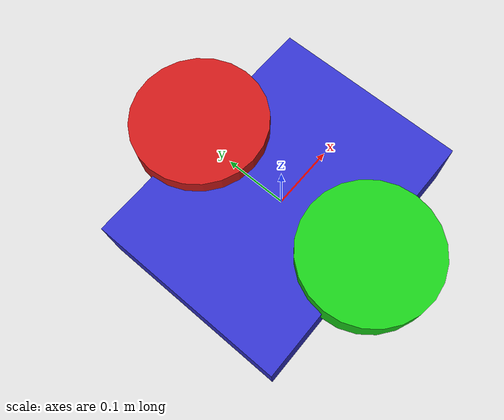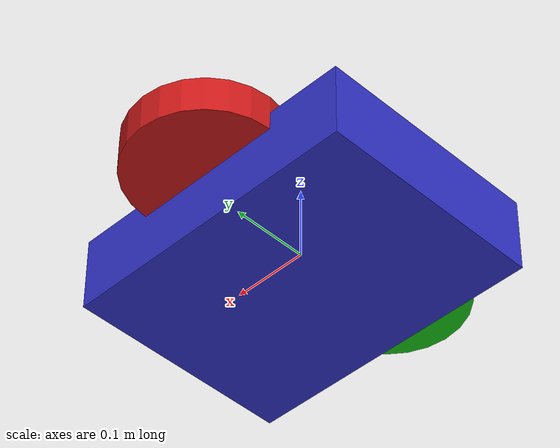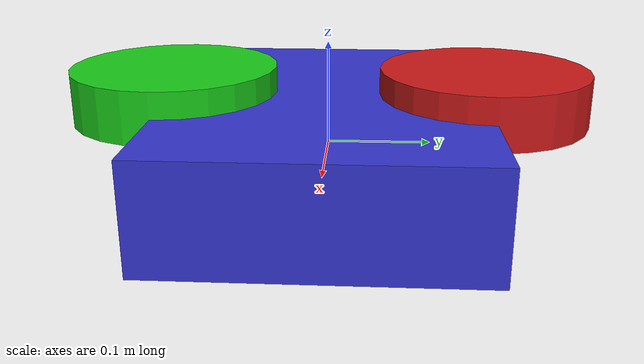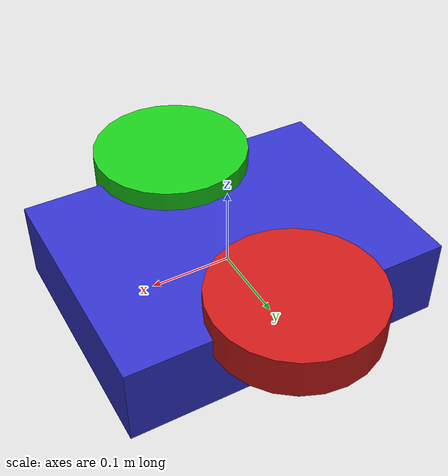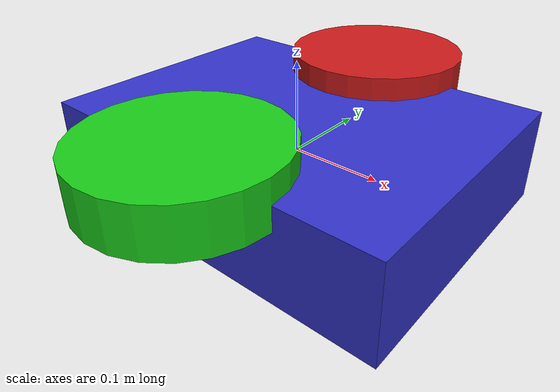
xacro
<?xml version="1.0"?>
<robot xmlns:xacro="http://ros.org/wiki/xacro" name="diff_bot">

  <!-- ========== Inertia Macro ========== -->
  <xacro:macro name="inertial" params="mass ixx iyy izz">
    <inertial>
      <mass value="${mass}"/>
      <inertia ixx="${ixx}" iyy="${iyy}" izz="${izz}" ixy="0.0" ixz="0.0" iyz="0.0"/>
    </inertial>
  </xacro:macro>

  <!-- ========== Base Link ========== -->
  <link name="base_link">
    <visual>
      <geometry><box size="0.4 0.3 0.1"/></geometry>
      <material><color rgba="0.2 0.2 0.8 1.0"/></material>
    </visual>
    <collision>
      <geometry><box size="0.4 0.3 0.1"/></geometry>
      <surface>
        <friction><ode><mu>1.0</mu><mu2>1.0</mu2></ode></friction>
      </surface>
    </collision>
    <xacro:inertial mass="5.0" ixx="0.1" iyy="0.1" izz="0.1"/>
  </link>

  <!-- ========== Left Wheel ========== -->
  <link name="left_wheel">
    <visual>
      <geometry><cylinder radius="0.1" length="0.05"/></geometry>
      <material><color rgba="0.8 0.1 0.1 1.0"/></material>
    </visual>
    <collision>
      <geometry><cylinder radius="0.1" length="0.05"/></geometry>
      <surface>
        <friction><ode><mu>1.0</mu><mu2>1.0</mu2></ode></friction>
      </surface>
    </collision>
    <xacro:inertial mass="1.0" ixx="0.01" iyy="0.01" izz="0.01"/>
  </link>

  <joint name="left_wheel_joint" type="continuous">
    <parent link="base_link"/>
    <child link="left_wheel"/>
    <origin xyz="0 0.15 0.05" rpy="0 0 0"/>
    <axis xyz="0 1 0"/>
  </joint>

  <!-- ========== Right Wheel ========== -->
  <link name="right_wheel">
    <visual>
      <geometry><cylinder radius="0.1" length="0.05"/></geometry>
      <material><color rgba="0.1 0.8 0.1 1.0"/></material>
    </visual>
    <collision>
      <geometry><cylinder radius="0.1" length="0.05"/></geometry>
      <surface>
        <friction><ode><mu>1.0</mu><mu2>1.0</mu2></ode></friction>
      </surface>
    </collision>
    <xacro:inertial mass="1.0" ixx="0.01" iyy="0.01" izz="0.01"/>
  </link>

  <joint name="right_wheel_joint" type="continuous">
    <parent link="base_link"/>
    <child link="right_wheel"/>
    <origin xyz="0 -0.15 0.05" rpy="0 0 0"/>
    <axis xyz="0 1 0"/>
  </joint>

  <!-- ========== Caster Wheel ========== -->
  <link name="caster_wheel">
    <visual>
      <geometry><sphere radius="0.05"/></geometry>
      <material><color rgba="0.5 0.5 0.5 1.0"/></material>
    </visual>
    <collision>
      <geometry><sphere radius="0.05"/></geometry>
      <surface>
        <friction><ode><mu>0.1</mu><mu2>0.1</mu2></ode></friction>
      </surface>
    </collision>
    <xacro:inertial mass="0.5" ixx="0.005" iyy="0.005" izz="0.005"/>
  </link>

  <joint name="caster_joint" type="fixed">
    <parent link="base_link"/>
    <child link="caster_wheel"/>
    <origin xyz="-0.15 0.0 0.0" rpy="0 0 0"/>
  </joint>

  <gazebo>
    <plugin filename="gz-sim-diff-drive-system" name="gz::sim::systems::DiffDrive">
      <left_joint>left_wheel_joint</left_joint>
      <right_joint>right_wheel_joint</right_joint>
      <wheel_separation>0.35</wheel_separation>
      <wheel_radius>0.1</wheel_radius>
      <odom_publish_frequency>30</odom_publish_frequency>
      <topic>cmd_vel</topic>
      <odom_topic>odom</odom_topic>
      <frame_id>odom</frame_id>
      <child_frame_id>base_link</child_frame_id>
    </plugin>
  </gazebo>

  <gazebo reference="lidar_link">
    <sensor name="lidar_sensor" type="gpu_lidar">
      <pose>0 0 0 0 0 0</pose>
      <topic>scan</topic>
      <update_rate>10</update_rate>
      <ray>
        <scan>
          <horizontal>
            <samples>360</samples>
            <resolution>1</resolution>
            <min_angle>-3.14159</min_angle>
            <max_angle>3.14159</max_angle>
          </horizontal>
        </scan>
        <range>
          <min>0.12</min>
          <max>10.0</max>
        </range>
      </ray>
      <always_on>1</always_on>
      <visualize>true</visualize>
    </sensor>
  </gazebo>

</robot>
